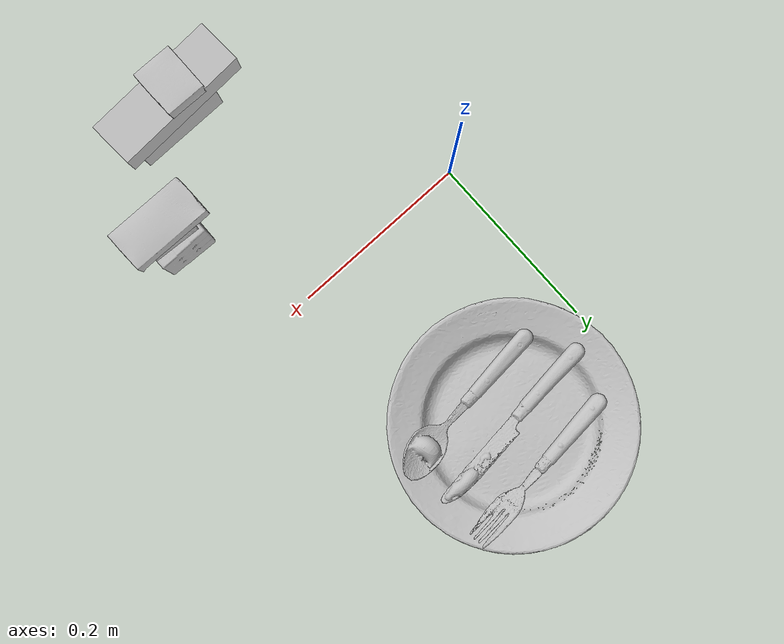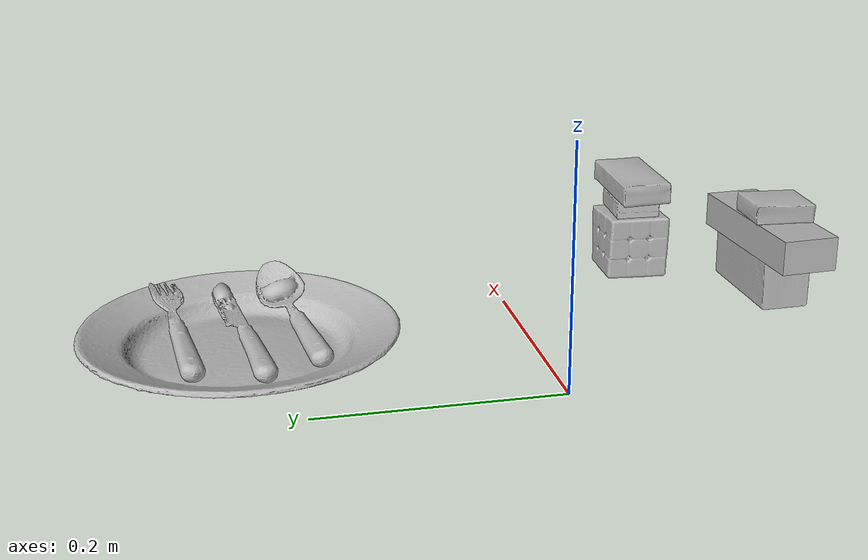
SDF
<?xml version="1.0" ?>
<sdf version="1.4">
  <world name="default">
    <light name="light1" type="point">
      <pose>0 0 1 0 0 0</pose>
      <diffuse>3 3 3 1</diffuse>
      <specular>3 3 3 1</specular>
    </light>
    <light name="light2" type="point">
      <pose>0 0.5 2 0 0 0</pose>
      <diffuse>1 1 1 1</diffuse>
      <specular>1 1 1 1</specular>
    </light>
    <light name="light3" type="point">
      <pose>0 0.5 2 0 0 0</pose>
      <diffuse>3 3 3 1</diffuse>
      <specular>3 3 3 1</specular>
    </light>
    <scene>
      <ambient>0.7 0.7 0.7</ambient>
    </scene>
    <model name="box11">
      <link name="link_box11">
        <collision name="default">
          <geometry>
            <mesh>
              <uri>model://rubiks_cube/collision_meshes/collision.obj</uri>
              <scale>1.0 1.0 1.0</scale>
            </mesh>
          </geometry>
          <surface>
            <friction>
              <ode>
                <mu>0.5</mu>
                <mu2>0.5</mu2>
              </ode>
            </friction>
          </surface>
        </collision>
        <visual name="default">
          <geometry>
            <mesh>
              <uri>model://rubiks_cube/visual_meshes/visual.dae</uri>
              <scale>1.0 1.0 1.0</scale>
            </mesh>
          </geometry>
        </visual>
        <inertial>
          <mass>0.14537504315376282</mass>
          <pose>2.6721039830590598e-05 5.2569666877388954e-05 -7.264316082000732e-06 -0.05467316775404926 -0.09814130205097539 -0.03445549690793288</pose>
          <inertia>
            <ixx>8.032947e-05</ixx>
            <iyy>7.9954865e-05</iyy>
            <izz>8.099513e-05</izz>
            <ixy>0</ixy>
            <ixz>0</ixz>
            <iyz>0</iyz>
          </inertia>
        </inertial>
      </link>
      <pose>0.259931355714798 -0.14022724330425262 0.028678959235548973 -6.986781196853888e-06 -7.554660658802472e-08 1.9832514501610358e-06</pose>
    </model>
    <model name="box12">
      <link name="link_box12">
        <collision name="default">
          <geometry>
            <mesh>
              <uri>model://cracker_box/collision_meshes/collision.obj</uri>
              <scale>0.25 0.25 0.25</scale>
            </mesh>
          </geometry>
          <surface>
            <friction>
              <ode>
                <mu>0.5</mu>
                <mu2>0.5</mu2>
              </ode>
            </friction>
          </surface>
        </collision>
        <visual name="default">
          <geometry>
            <mesh>
              <uri>model://cracker_box/visual_meshes/visual.dae</uri>
              <scale>0.25 0.25 0.25</scale>
            </mesh>
          </geometry>
        </visual>
        <inertial>
          <mass>0.04629049822688103</mass>
          <pose>0.00023660360602661967 6.358561950037256e-05 -0.00042573834070935845 -0.00031620769195764 -0.01110649332573822 0.0025467952358288496</pose>
          <inertia>
            <ixx>7.358898e-06</ixx>
            <iyy>1.2150985e-05</iyy>
            <izz>1.7340568e-05</izz>
            <ixy>0</ixy>
            <ixz>0</ixz>
            <iyz>0</iyz>
          </inertia>
        </inertial>
      </link>
      <pose>0.26006948947906494 -0.13978157937526703 0.06684189289808273 -0.019522373006094867 0.006986900790760295 -0.06588327930799998</pose>
    </model>
    <model name="box13">
      <link name="link_box13">
        <collision name="default">
          <geometry>
            <mesh>
              <uri>model://sugar_box/collision_meshes/collision.obj</uri>
              <scale>0.5 0.5 0.5</scale>
            </mesh>
          </geometry>
          <surface>
            <friction>
              <ode>
                <mu>0.5</mu>
                <mu2>0.5</mu2>
              </ode>
            </friction>
          </surface>
        </collision>
        <visual name="default">
          <geometry>
            <mesh>
              <uri>model://sugar_box/visual_meshes/visual.dae</uri>
              <scale>0.5 0.5 0.5</scale>
            </mesh>
          </geometry>
        </visual>
        <inertial>
          <mass>0.06844717264175415</mass>
          <pose>0.0005171863595023751 1.924554817378521e-05 -0.00018182402709499002 -0.0004046259509043031 0.0010506635218006705 0.0026153792547683827</pose>
          <inertia>
            <ixx>1.4257497e-05</ixx>
            <iyy>4.608316e-05</iyy>
            <izz>5.5167053e-05</izz>
            <ixy>0</ixy>
            <ixz>0</ixz>
            <iyz>0</iyz>
          </inertia>
        </inertial>
      </link>
      <pose>0.2594979405403137 -0.1396220177412033 0.08704017847776413 -0.02022930966711889 -0.02845820056225634 -0.004490766832943832</pose>
    </model>
    <model name="box21">
      <link name="link_box21">
        <collision name="default">
          <geometry>
            <mesh>
              <uri>model://wood_block/collision_meshes/collision.obj</uri>
              <scale>0.5 0.5 0.5</scale>
            </mesh>
          </geometry>
          <surface>
            <friction>
              <ode>
                <mu>0.5</mu>
                <mu2>0.5</mu2>
              </ode>
            </friction>
          </surface>
        </collision>
        <visual name="default">
          <geometry>
            <mesh>
              <uri>model://wood_block/visual_meshes/visual.dae</uri>
              <scale>0.5 0.5 0.5</scale>
            </mesh>
          </geometry>
        </visual>
        <inertial>
          <mass>0.22006426751613617</mass>
          <pose>-2.9066577553749084e-06 -0.00028540476341731846 0.00013204292918089777 -0.05220890442695651 -0.005192696130650637 -0.006861379915905358</pose>
          <inertia>
            <ixx>7.361981e-05</ixx>
            <iyy>0.00023256506</iyy>
            <izz>0.00023169514</izz>
            <ixy>0</ixy>
            <ixz>0</ixz>
            <iyz>0</iyz>
          </inertia>
        </inertial>
      </link>
      <pose>0.17981483042240143 -0.23929238319396973 0.022629525512456894 -0.005222534476166378 0.005719222964939146 0.0064289531868201265</pose>
    </model>
    <model name="box22">
      <link name="link_box22">
        <collision name="default">
          <geometry>
            <mesh>
              <uri>model://jenga/collision_meshes/collision.obj</uri>
              <scale>1.0 1.0 1.0</scale>
            </mesh>
          </geometry>
          <surface>
            <friction>
              <ode>
                <mu>0.5</mu>
                <mu2>0.5</mu2>
              </ode>
            </friction>
          </surface>
        </collision>
        <visual name="default">
          <geometry>
            <mesh>
              <uri>model://jenga/visual_meshes/visual.dae</uri>
              <scale>1.0 1.0 1.0</scale>
            </mesh>
          </geometry>
        </visual>
        <inertial>
          <mass>0.1883949637413025</mass>
          <pose>-2.502855807051674e-07 -0.00010250010382151231 -4.0923405322246253e-05 0.0 -7.342154049184251e-07 0.0</pose>
          <inertia>
            <ixx>5.213346e-05</ixx>
            <iyy>0.0003532549</iyy>
            <izz>0.00037712968</izz>
            <ixy>0</ixy>
            <ixz>0</ixz>
            <iyz>0</iyz>
          </inertia>
        </inertial>
      </link>
      <pose>0.1696433424949646 -0.2391321063041687 0.06043355539441109 -0.005181341913364687 -6.0879737077156415e-05 0.047764009664915404</pose>
    </model>
    <model name="box23">
      <link name="link_box23">
        <collision name="default">
          <geometry>
            <mesh>
              <uri>model://pudding_box/collision_meshes/collision.obj</uri>
              <scale>0.5 0.5 0.5</scale>
            </mesh>
          </geometry>
          <surface>
            <friction>
              <ode>
                <mu>0.5</mu>
                <mu2>0.5</mu2>
              </ode>
            </friction>
          </surface>
        </collision>
        <visual name="default">
          <geometry>
            <mesh>
              <uri>model://pudding_box/visual_meshes/visual.dae</uri>
              <scale>0.5 0.5 0.5</scale>
            </mesh>
          </geometry>
        </visual>
        <inertial>
          <mass>0.030779412016272545</mass>
          <pose>0.00024474109522998333 0.0004033942532259971 -0.0002594413817860186 0.0052131022413302 -0.00660379919873188 0.020079828882866795</pose>
          <inertia>
            <ixx>8.6986365e-06</ixx>
            <iyy>5.8525034e-06</iyy>
            <izz>1.2845808e-05</izz>
            <ixy>0</ixy>
            <ixz>0</ixz>
            <iyz>0</iyz>
          </inertia>
        </inertial>
      </link>
      <pose>0.1592889279127121 -0.23903591930866241 0.08529321104288101 0.01716956506067977 -0.011747051937197293 -0.007838590627697555</pose>
    </model>
    <model name="plate1">
      <link name="link_plate1">
        <collision name="default">
          <geometry>
            <mesh>
              <uri>model://plate/collision_meshes/collision.obj</uri>
              <scale>1.0 1.0 1.0</scale>
            </mesh>
          </geometry>
          <surface>
            <friction>
              <ode>
                <mu>0.5</mu>
                <mu2>0.5</mu2>
              </ode>
            </friction>
          </surface>
        </collision>
        <visual name="default">
          <geometry>
            <mesh>
              <uri>model://plate/visual_meshes/visual.dae</uri>
              <scale>1.0 1.0 1.0</scale>
            </mesh>
          </geometry>
        </visual>
        <inertial>
          <mass>0.2551877498626709</mass>
          <pose>-0.0006044633337296546 0.0002782584633678198 -0.0010561984963715076 0.002218758596895186 -0.003225500510611216 0.45261892370472845</pose>
          <inertia>
            <ixx>0.0011937734</ixx>
            <iyy>0.0011823553</iyy>
            <izz>0.002334842</izz>
            <ixy>0</ixy>
            <ixz>0</ixz>
            <iyz>0</iyz>
          </inertia>
        </inertial>
      </link>
      <pose>0.12999999523162842 0.24000003933906555 0.013733000494539738 1.1990775735337097e-08 1.1001247673076343e-08 -1.7878435436965514e-07</pose>
    </model>
    <model name="silverware1">
      <link name="link_silverware1">
        <collision name="default">
          <geometry>
            <mesh>
              <uri>model://knife/collision_meshes/collision.obj</uri>
              <scale>1.0 1.0 1.0</scale>
            </mesh>
          </geometry>
          <surface>
            <friction>
              <ode>
                <mu>0.5</mu>
                <mu2>0.5</mu2>
              </ode>
            </friction>
          </surface>
        </collision>
        <visual name="default">
          <geometry>
            <mesh>
              <uri>model://knife/visual_meshes/visual.dae</uri>
              <scale>1.0 1.0 1.0</scale>
            </mesh>
          </geometry>
        </visual>
        <inertial>
          <mass>0.030903667211532593</mass>
          <pose>-0.023785250261425972 0.0015275125624611974 5.062023410573602e-05 0.07305665398911224 0.017248417197799442 -0.0074098217442817044</pose>
          <inertia>
            <ixx>8.7717143e-07</ixx>
            <iyy>0.00011872688</iyy>
            <izz>0.000119009375</izz>
            <ixy>0</ixy>
            <ixz>0</ixz>
            <iyz>0</iyz>
          </inertia>
        </inertial>
      </link>
      <pose>0.13013017177581787 0.23997312784194946 0.025063971057534218 -3.0487548884663225 0.019380518857064512 0.11995838209971114</pose>
    </model>
    <model name="silverware2">
      <link name="link_silverware2">
        <collision name="default">
          <geometry>
            <mesh>
              <uri>model://spoon/collision_meshes/collision.obj</uri>
              <scale>1.0 1.0 1.0</scale>
            </mesh>
          </geometry>
          <surface>
            <friction>
              <ode>
                <mu>0.5</mu>
                <mu2>0.5</mu2>
              </ode>
            </friction>
          </surface>
        </collision>
        <visual name="default">
          <geometry>
            <mesh>
              <uri>model://spoon/visual_meshes/visual.dae</uri>
              <scale>1.0 1.0 1.0</scale>
            </mesh>
          </geometry>
        </visual>
        <inertial>
          <mass>0.020994963124394417</mass>
          <pose>-0.005526323337107897 -0.00160341733135283 -0.0007271658978424966 0.035216710718480135 -0.03906584501417282 0.00615060951780049</pose>
          <inertia>
            <ixx>1.1677738e-06</ixx>
            <iyy>7.988513e-05</iyy>
            <izz>8.046103e-05</izz>
            <ixy>0</ixy>
            <ixz>0</ixz>
            <iyz>0</iyz>
          </inertia>
        </inertial>
      </link>
      <pose>0.15079495310783386 0.19370421767234802 0.022655801847577095 -0.30513198576113854 0.01208137201114003 0.10490727565849195</pose>
    </model>
    <model name="silverware3">
      <link name="link_silverware3">
        <collision name="default">
          <geometry>
            <mesh>
              <uri>model://fork/collision_meshes/collision.obj</uri>
              <scale>1.0 1.0 1.0</scale>
            </mesh>
          </geometry>
          <surface>
            <friction>
              <ode>
                <mu>0.5</mu>
                <mu2>0.5</mu2>
              </ode>
            </friction>
          </surface>
        </collision>
        <visual name="default">
          <geometry>
            <mesh>
              <uri>model://fork/visual_meshes/visual.dae</uri>
              <scale>1.0 1.0 1.0</scale>
            </mesh>
          </geometry>
        </visual>
        <inertial>
          <mass>0.012144052423536777</mass>
          <pose>-0.029570043087005615 0.0004658822144847363 0.0003218860656488687 -0.013551171335247731 -0.01097783699854739 0.014453902564514984</pose>
          <inertia>
            <ixx>4.257177e-07</ixx>
            <iyy>3.170462e-05</iyy>
            <izz>3.1895037e-05</izz>
            <ixy>0</ixy>
            <ixz>0</ixz>
            <iyz>0</iyz>
          </inertia>
        </inertial>
      </link>
      <pose>0.13962987065315247 0.2902694046497345 0.028358884155750275 -2.9523199292747013 -0.05210471814767402 0.10658634788558376</pose>
    </model>
  </world>
</sdf>
